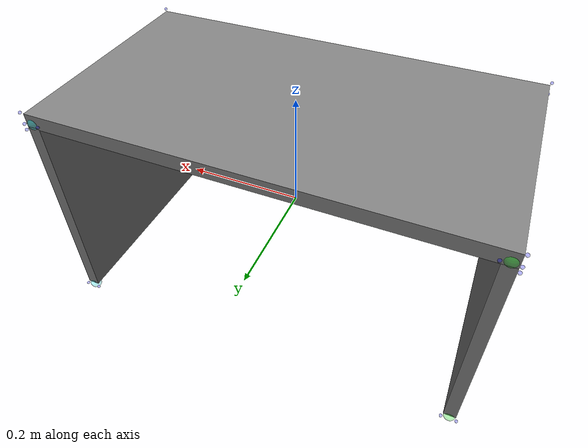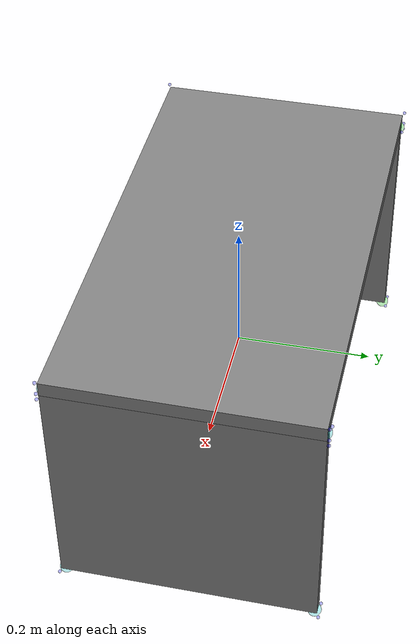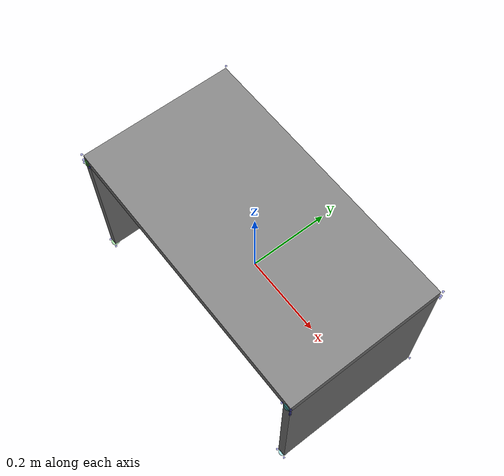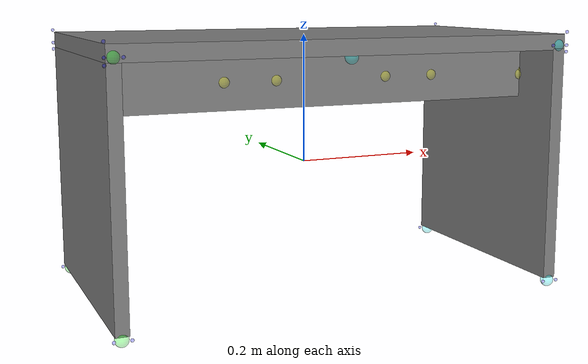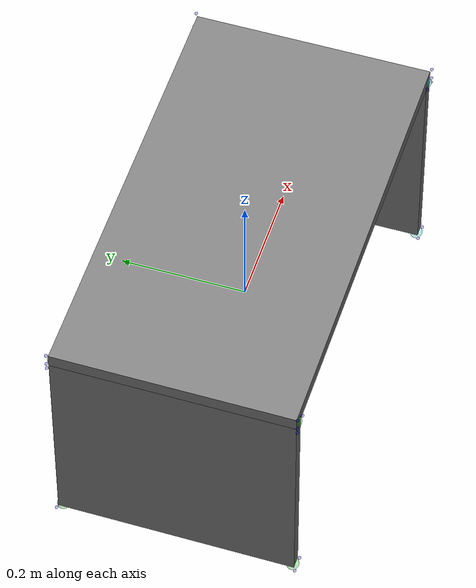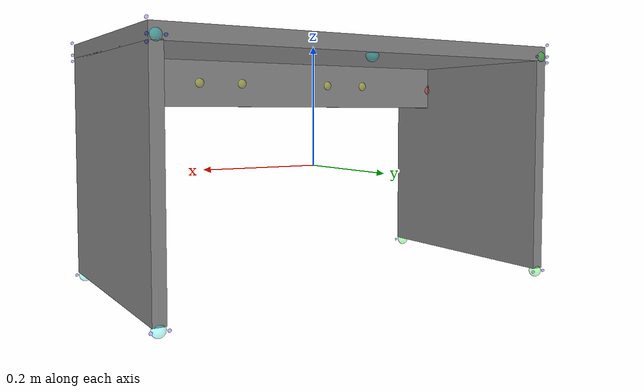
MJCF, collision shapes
<mujoco model="desk_mikael_1064">
    <asset>
        <mesh file="desk_mikael_1064/drawer.stl" name="drawer" scale="0.0005 0.0005 0.0005" />
        <mesh file="desk_mikael_1064/leftplane.stl" name="leftplane" scale="0.0005 0.0005 0.0005" />
        <mesh file="desk_mikael_1064/rightplane.stl" name="rightplane" scale="0.0005 0.0005 0.0005" />
        <mesh file="desk_mikael_1064/topplane.stl" name="topplane" scale="0.0005 0.0005 0.0005" />
        <texture file="../textures/light-wood.png" name="tex-light-wood" type="2d" />
        <material name="pencil-wood" reflectance="0.5" texrepeat="20 20" texture="tex-light-wood" texuniform="true" />
    </asset>
    <equality>
        <weld active="false" body1="1_rightplane" body2="4_topplane" solimp="1 1 0.5" solref="0.01 0.3" />
        <weld active="false" body1="2_leftplane" body2="4_topplane" solimp="1 1 0.5" solref="0.01 0.3" />
        <weld active="false" body1="3_drawer" body2="4_topplane" solimp="1 1 0.5" solref="0.01 0.3" />
        <weld active="false" body1="1_rightplane" body2="3_drawer" solimp="1 1 0.5" solref="0.01 0.3" />
        <weld active="false" body1="2_leftplane" body2="3_drawer" solimp="1 1 0.5" solref="0.01 0.3" />
    </equality>
    <worldbody>
        <body name="1_part1" pos="0.34 0.0 0.0">
            <geom density="0" material="pencil-wood" mesh="leftplane" name="2_leftplane_geom" pos="0 0 0" rgba="0.82 0.71 0.55 1" solref="0.001 1" type="mesh" contype="0" conaffinity="0" />
            <geom density="100"  name="noviz_collision_2_leftplane_geom" pos="0 0 0" solref="0.001 1" type="box" size="0.01 0.19 0.18" />
            <site name="leftplane-drawer,0,180,conn_site" pos="-0.01 -0.1 0.135" quat="0.707 0 -0.707 0" rgba="1 1 0 0.3" size="0.01" />
            <site name="leftplane-topplane,0,conn_site" pos="0.0 0.0 0.185" rgba="0 1 1 0.3" size="0.01" />

            <site name="leftplane-topplane,0,conn_site_fake1" pos="0.0 0.185 0.185" rgba="0 1 1 0.3" size="0.01" />
            <site name="leftplane-topplane,0,conn_site_fake2" pos="0.0 -0.185 -0.185" rgba="0 1 1 0.3" size="0.01" />
            <site name="leftplane-topplane,0,conn_site_fake3" pos="0.0 0.185 -0.185" rgba="0 1 1 0.3" size="0.01" />
            <site name="leftplane-topplane,0,conn_site_fake4" pos="0.0 -0.185 0.185" rgba="0 1 1 0.3" size="0.01" />

            <site name="2_leftplane_bottom_site" pos="0.0 0.0 -0.18" rgba="0 0 1 0" size="0.005" />
            <site name="2_leftplane_top_site" pos="0.0 0.0 0.18" rgba="0 0 1 0" size="0.005" />
            <site name="2_leftplane_horizontal_radius_site" pos="0.0 0.0 0.0" rgba="0 0 1 0" size="0.1" />
            <site name="2_leftplane_corner_site1" pos="0.0125 -0.192 -0.185" rgba="0 0 1 0.3" size="0.0025" />
            <site name="2_leftplane_corner_site2" pos="0.0125 0.1925 -0.185" rgba="0 0 1 0.3" size="0.0025" />
            <site name="2_leftplane_corner_site3" pos="0.0125 -0.192 0.185" rgba="0 0 1 0.3" size="0.0025" />
            <site name="2_leftplane_corner_site4" pos="0.0125 0.1925 0.185" rgba="0 0 1 0.3" size="0.0025" />
            <site name="2_leftplane_corner_site5" pos="-0.012 -0.192 -0.185" rgba="0 0 1 0.3" size="0.0025" />
            <site name="2_leftplane_corner_site6" pos="-0.012 0.1925 -0.185" rgba="0 0 1 0.3" size="0.0025" />
            <site name="2_leftplane_corner_site7" pos="-0.012 -0.192 0.185" rgba="0 0 1 0.3" size="0.0025" />
            <site name="2_leftplane_corner_site8" pos="-0.012 0.1925 0.185" rgba="0 0 1 0.3" size="0.0025" />
        </body>
        <body name="0_part0" pos="-0.34 0.0 0.0">
            <geom density="0" material="pencil-wood" mesh="rightplane" name="1_rightplane_geom" pos="0 0 0" rgba="0.82 0.71 0.55 1" solref="0.001 1" type="mesh" contype="0" conaffinity="0"/>
            <geom density="100" name="noviz_collision_1_rightplane_geom" pos="0 0 0"  solref="0.001 1" type="box" size="0.01 0.19 0.18" />
            <site name="rightplane-drawer,0,180,conn_site" pos="0.01 -0.1 0.135" quat="0.707 0 -0.707 0" rgba="1 0 0 0.3" size="0.01" />
            <site name="rightplane-topplane,0,conn_site" pos="0.0 0.0 0.185" rgba="0 1 0 0.3" size="0.01" />

            <site name="rightplane-topplane,0,conn_site_fake1" pos="0.0 0.185 0.185" rgba="0 1 0 0.3" size="0.01" />
            <site name="rightplane-topplane,0,conn_site_fake2" pos="0.0 -0.185 -0.185" rgba="0 1 0 0.3" size="0.01" />
            <site name="rightplane-topplane,0,conn_site_fake3" pos="0.0 0.185 -0.185" rgba="0 1 0 0.3" size="0.01" />
            <site name="rightplane-topplane,0,conn_site_fake4" pos="0.0 -0.185 0.185" rgba="0 1 0 0.3" size="0.01" />

            <site name="1_rightplane_bottom_site" pos="0.0 0.0 -0.18" rgba="0 0 1 0" size="0.005" />
            <site name="1_rightplane_top_site" pos="0.0 0.0 0.18" rgba="0 0 1 0" size="0.005" />
            <site name="1_rightplane_horizontal_radius_site" pos="0.0 0.0 0.0" rgba="0 0 1 0" size="0.1" />
            <site name="1_rightplane_corner_site1" pos="0.0125 -0.192 -0.185" rgba="0 0 1 0.3" size="0.0025" />
            <site name="1_rightplane_corner_site2" pos="0.0125 0.1925 -0.185" rgba="0 0 1 0.3" size="0.0025" />
            <site name="1_rightplane_corner_site3" pos="0.0125 -0.192 0.185" rgba="0 0 1 0.3" size="0.0025" />
            <site name="1_rightplane_corner_site4" pos="0.0125 0.1925 0.185" rgba="0 0 1 0.3" size="0.0025" />
            <site name="1_rightplane_corner_site5" pos="-0.012 -0.192 -0.185" rgba="0 0 1 0.3" size="0.0025" />
            <site name="1_rightplane_corner_site6" pos="-0.012 0.1925 -0.185" rgba="0 0 1 0.3" size="0.0025" />
            <site name="1_rightplane_corner_site7" pos="-0.012 -0.192 0.185" rgba="0 0 1 0.3" size="0.0025" />
            <site name="1_rightplane_corner_site8" pos="-0.012 0.1925 0.185" rgba="0 0 1 0.3" size="0.0025" />
        </body>
        <body name="3_part3" pos="0.0 0.0 0.19">
            <geom density="0" material="pencil-wood" mesh="topplane" name="4_topplane_geom" pos="0 0 0" rgba="0.82 0.71 0.55 0" solref="0.001 1" type="mesh" contype="0" conaffinity="0"/>
            <geom density="100" name="noviz_collision_4_topplane_geom" pos="0 0 0" solref="0.001 1" type="box" size="0.35 0.19 0.012" />
            <site name="topplane-rightplane,0,conn_site" pos="-0.34 0.0 -0.015" rgba="0 1 0 0.3" size="0.01" />
            <site name="topplane-leftplane,0,conn_site" pos="0.34 0.0 -0.015" rgba="0 1 1 0.3" size="0.01" />
            <site name="topplane-leftplane,0,conn_site_fake1" pos="0.0 -0.17 -0.015" rgba="0 1 1 0.3" size="0.01" />
            <site name="topplane-leftplane,0,conn_site_fake2" pos="0.0 0.17 -0.015" rgba="0 1 1 0.3" size="0.01" />
            <site name="topplane-leftplane,0,conn_site_fake3" pos="0.34 0.17 -0.015" rgba="0 1 1 0.3" size="0.01" />
            <site name="topplane-leftplane,0,conn_site_fake4" pos="-0.34 -0.17 -0.015" rgba="0 1 1 0.3" size="0.01" />

            <site name="4_topplane_bottom_site" pos="-0.34 0.0 0.0" rgba="0 0 1 0" size="0.005" />
            <site name="4_topplane_top_site" pos="0.34 0.0 0.0" rgba="0 0 1 0" size="0.005" />
            <site name="4_topplane_horizontal_radius_site" pos="0.0 0.0 0.0" rgba="0 0 1 0" size="0.2" />
            <site name="4_topplane_corner_site1" pos="-0.352 0.1925 0.015" rgba="0 0 1 0.3" size="0.0025" />
            <site name="4_topplane_corner_site2" pos="-0.352 -0.192 0.015" rgba="0 0 1 0.3" size="0.0025" />
            <site name="4_topplane_corner_site3" pos="0.3525 0.1925 0.015" rgba="0 0 1 0.3" size="0.0025" />
            <site name="4_topplane_corner_site4" pos="0.3525 -0.192 0.015" rgba="0 0 1 0.3" size="0.0025" />
            <site name="4_topplane_corner_site5" pos="-0.352 0.1925 -0.015" rgba="0 0 1 0.3" size="0.0025" />
            <site name="4_topplane_corner_site6" pos="-0.352 -0.192 -0.015" rgba="0 0 1 0.3" size="0.0025" />
            <site name="4_topplane_corner_site7" pos="0.3525 0.1925 -0.015" rgba="0 0 1 0.3" size="0.0025" />
            <site name="4_topplane_corner_site8" pos="0.3525 -0.192 -0.015" rgba="0 0 1 0.3" size="0.0025" />
        </body>
        <body name="2_part2" pos="0.0 -0.1 0.14">
            <geom density="0" material="pencil-wood" mesh="drawer" name="3_drawer_geom" pos="0 0 0" rgba="0.82 0.71 0.55 1" solref="0.001 1" type="mesh" contype="0" conaffinity="0"/>
            <geom density="100" name="noviz_collision_3_drawer_geom" pos="0 0 0" solref="0.001 1" type="box" size="0.33 0.006 0.04" />
            <site name="drawer-rightplane,0,180,conn_site" pos="-0.335 0.0 0.0" quat="0.707 0 -0.707 0" rgba="1 0 0 0.3" size="0.01" />
            <site name="drawer-leftplane,0,180,conn_site" pos="0.335 0.0 0.0" quat="0.707 0 -0.707 0" rgba="1 1 0 0.3" size="0.01" />

            <site name="drawer-leftplane,0,180,conn_site_fake1" pos="0.167 0.0 0.0" quat="0.707 0 -0.707 0" rgba="1 1 0 0.3" size="0.01" />
            <site name="drawer-leftplane,0,180,conn_site_fake2" pos="-0.167 0.0 0.0" quat="0.707 0 -0.707 0" rgba="1 1 0 0.3" size="0.01" />
            <site name="drawer-leftplane,0,180,conn_site_fake3" pos="-0.088 0.0 0.0" quat="0.707 0 -0.707 0" rgba="1 1 0 0.3" size="0.01" />
            <site name="drawer-leftplane,0,180,conn_site_fake4" pos="0.088 0.0 0.0" quat="0.707 0 -0.707 0" rgba="1 1 0 0.3" size="0.01" />

            <site name="3_drawer_bottom_site" pos="-0.35 0.0 0.0" rgba="0 0 1 0" size="0.005" />
            <site name="3_drawer_top_site" pos="0.35 0.0 0.0" rgba="0 0 1 0" size="0.005" />
            <site name="3_drawer_horizontal_radius_site" pos="0.0 0.0 0.0" rgba="0 0 1 0" size="0.1" />
            <site name="3_drawer_corner_site1" pos="-0.335 -0.01 0.045" rgba="0 0 1 0.3" size="0.0025" />
            <site name="3_drawer_corner_site2" pos="-0.335 -0.01 -0.045" rgba="0 0 1 0.3" size="0.0025" />
            <site name="3_drawer_corner_site3" pos="-0.335 0.01 0.045" rgba="0 0 1 0.3" size="0.0025" />
            <site name="3_drawer_corner_site4" pos="-0.335 0.01 -0.045" rgba="0 0 1 0.3" size="0.0025" />
            <site name="3_drawer_corner_site5" pos="0.335 -0.01 0.045" rgba="0 0 1 0.3" size="0.0025" />
            <site name="3_drawer_corner_site6" pos="0.335 -0.01 -0.045" rgba="0 0 1 0.3" size="0.0025" />
            <site name="3_drawer_corner_site7" pos="0.335 0.01 0.045" rgba="0 0 1 0.3" size="0.0025" />
            <site name="3_drawer_corner_site8" pos="0.335 0.01 -0.045" rgba="0 0 1 0.3" size="0.0025" />
        </body>
    </worldbody>
</mujoco>
